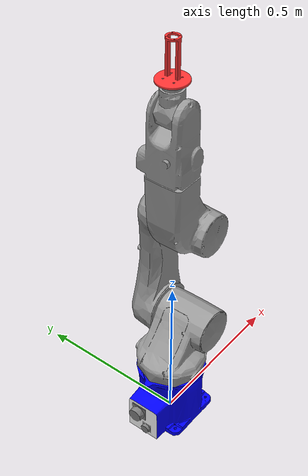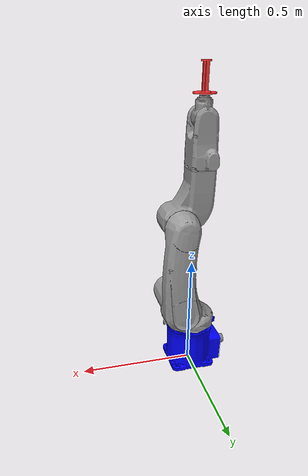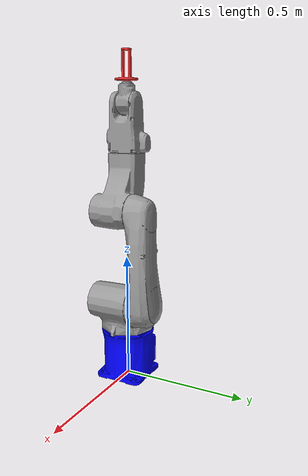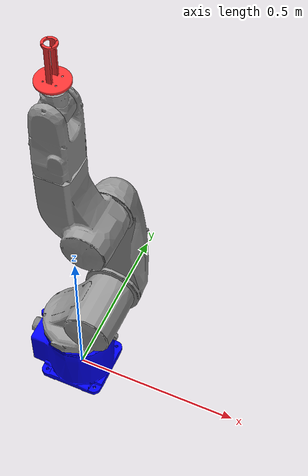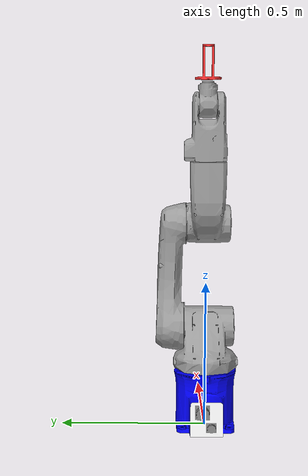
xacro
<?xml version="1.0" encoding="UTF-8"?>
<robot name="add_post_pro_robot_b120" xmlns:xacro="http://www.ros.org/wiki/xacro">
    <xacro:include filename="$(find denso_robot_descriptions)/vs6577_description/urdf/vs6577_vaccum.urdf.xacro"/>

    <!--xacro:include filename="$(find add_post_pro_robot)/urdf/multisensor_holder.urdf.xacro"/-->
</robot>

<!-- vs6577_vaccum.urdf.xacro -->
<robot name="vs6577" xmlns:xacro="http://www.ros.org/wiki/xacro">

<xacro:include filename="$(find denso_robot_descriptions)/vs6577_description/urdf/vs6577.transmission.xacro"/>
<xacro:include filename="$(find add_post_pro_simulation)/urdf/vaccum_gripper.urdf.xacro"/>

	<gazebo>
        <plugin name="gazebo_ros_control" filename="libgazebo_ros_control.so">
            <robotNamespace>/vs6577</robotNamespace>
			<legacyModeNS>true</legacyModeNS>
        </plugin>
    </gazebo>

	<link name="world"/>

	<joint name="joint_w" type="fixed">
		<parent link="world"/>
		<child link="base_link"/>
		<origin xyz="0 0 0"/>
	</joint>

	<link name="base_link">
		<visual>
			<origin rpy="0 0 0" xyz="0 0 0"/>
			<geometry>
				<mesh filename="package://denso_robot_descriptions/vs6577_description/meshes/base_link.dae" scale="1 1 1"/>
			</geometry>
		</visual>
		<collision>
			<origin rpy="0 0 0" xyz="0 0 0"/>
			<geometry>
				<mesh filename="package://denso_robot_descriptions/vs6577_description/meshes/base_link.dae" scale="1 1 1"/>
			</geometry>
		</collision>
		<inertial>
			<mass value="1"/>
			<origin rpy="0.000000 0.000000 0.000000" xyz="0.000000 0.000000 0.000000"/>
			<inertia ixx="1" ixy="0" ixz="0" iyy="1" iyz="0" izz="1"/>
		</inertial>
	</link>
	<link name="J1">
		<visual>
			<origin rpy="0 0 0" xyz="0 0 0"/>
			<geometry>
				<mesh filename="package://denso_robot_descriptions/vs6577_description/meshes/J1.dae" scale="1 1 1"/>
			</geometry>
		</visual>
		<collision>
			<origin rpy="0 0 0" xyz="0 0 0"/>
			<geometry>
				<mesh filename="package://denso_robot_descriptions/vs6577_description/meshes/J1.dae" scale="1 1 1"/>
			</geometry>
		</collision>
		<inertial>
			<mass value="1"/>
			<origin rpy="0.000000 0.000000 0.000000" xyz="0.000000 0.000000 0.000000"/>
			<inertia ixx="1" ixy="0" ixz="0" iyy="1" iyz="0" izz="1"/>
		</inertial>
	</link>
	<link name="J2">
		<visual>
			<origin rpy="0 0 0" xyz="0 0 0"/>
			<geometry>
				<mesh filename="package://denso_robot_descriptions/vs6577_description/meshes/J2.dae" scale="1 1 1"/>
			</geometry>
		</visual>
		<collision>
			<origin rpy="0 0 0" xyz="0 0 0"/>
			<geometry>
				<mesh filename="package://denso_robot_descriptions/vs6577_description/meshes/J2.dae" scale="1 1 1"/>
			</geometry>
		</collision>
		<inertial>
			<mass value="1"/>
			<origin rpy="0.000000 0.000000 0.000000" xyz="0.000000 0.000000 0.000000"/>
			<inertia ixx="1" ixy="0" ixz="0" iyy="1" iyz="0" izz="1"/>
		</inertial>
	</link>
	<link name="J3">
		<visual>
			<origin rpy="0 0 0" xyz="0 0 0"/>
			<geometry>
				<mesh filename="package://denso_robot_descriptions/vs6577_description/meshes/J3.dae" scale="1 1 1"/>
			</geometry>
		</visual>
		<collision>
			<origin rpy="0 0 0" xyz="0 0 0"/>
			<geometry>
				<mesh filename="package://denso_robot_descriptions/vs6577_description/meshes/J3.dae" scale="1 1 1"/>
			</geometry>
		</collision>
		<inertial>
			<mass value="1"/>
			<origin rpy="0.000000 0.000000 0.000000" xyz="0.000000 0.000000 0.000000"/>
			<inertia ixx="1" ixy="0" ixz="0" iyy="1" iyz="0" izz="1"/>
		</inertial>
	</link>
	<link name="J4">
		<visual>
			<origin rpy="0 0 0" xyz="0 0 0"/>
			<geometry>
				<mesh filename="package://denso_robot_descriptions/vs6577_description/meshes/J4.dae" scale="1 1 1"/>
			</geometry>
		</visual>
		<collision>
			<origin rpy="0 0 0" xyz="0 0 0"/>
			<geometry>
				<mesh filename="package://denso_robot_descriptions/vs6577_description/meshes/J4.dae" scale="1 1 1"/>
			</geometry>
		</collision>
		<inertial>
			<mass value="1"/>
			<origin rpy="0.000000 0.000000 0.000000" xyz="0.000000 0.000000 0.000000"/>
			<inertia ixx="1" ixy="0" ixz="0" iyy="1" iyz="0" izz="1"/>
		</inertial>
	</link>
	<link name="J5">
		<visual>
			<origin rpy="0 0 0" xyz="0 0 0"/>
			<geometry>
				<mesh filename="package://denso_robot_descriptions/vs6577_description/meshes/J5.dae" scale="1 1 1"/>
			</geometry>
		</visual>
		<collision>
			<origin rpy="0 0 0" xyz="0 0 0"/>
			<geometry>
				<mesh filename="package://denso_robot_descriptions/vs6577_description/meshes/J5.dae" scale="1 1 1"/>
			</geometry>
		</collision>
		<inertial>
			<mass value="1"/>
			<origin rpy="0.000000 0.000000 0.000000" xyz="0.000000 0.000000 0.000000"/>
			<inertia ixx="1" ixy="0" ixz="0" iyy="1" iyz="0" izz="1"/>
		</inertial>
	</link>
	<link name="J6">
		<visual>
			<origin rpy="0 0 0" xyz="0 0 0"/>
			<geometry>
				<mesh filename="package://denso_robot_descriptions/vs6577_description/meshes/J6.dae" scale="1 1 1"/>
			</geometry>
		</visual>
		<collision>
			<origin rpy="0 0 0" xyz="0 0 0"/>
			<geometry>
				<mesh filename="package://denso_robot_descriptions/vs6577_description/meshes/J6.dae" scale="1 1 1"/>
			</geometry>
		</collision>
		<inertial>
			<mass value="1"/>
			<origin rpy="0.000000 0.000000 0.000000" xyz="0.000000 0.000000 0.000000"/>
			<inertia ixx="1" ixy="0" ixz="0" iyy="1" iyz="0" izz="1"/>
		</inertial>
	</link>

	<gazebo reference="base_link">
		<material>Gazebo/CoM</material>
	</gazebo>
	<gazebo reference="J1">
		<material>Gazebo/Gray</material>
	</gazebo>
	<gazebo reference="J2">
		<material>Gazebo/Gray</material>
	</gazebo>
	<gazebo reference="J3">
		<material>Gazebo/Gray</material>
	</gazebo>
	<gazebo reference="J4">
		<material>Gazebo/Gray</material>
	</gazebo>
	<gazebo reference="J5">
		<material>Gazebo/Gray</material>
	</gazebo>
	<gazebo reference="J6">
		<material>Gazebo/Gray</material>
	</gazebo>

	<gazebo>
		<gravity>False</gravity>
	</gazebo>
	<joint name="joint_1" type="revolute">
		<parent link="base_link"/>
		<child link="J1"/>
		<origin rpy="0.000000 0.000000 0.000000" xyz="0.000000 0.000000 0.000000"/>
		<axis xyz="-0.000000 -0.000000 1.000000"/>
		<limit effort="100" lower="-2.96706" upper="2.96706" velocity="1"/>
		<dynamics damping="0" friction="0"/>
	</joint>

	<joint name="joint_2" type="revolute">
		<parent link="J1"/>
		<child link="J2"/>
		<origin rpy="0.000000 0.000000 0.000000" xyz="0.075000 0.000000 0.335000"/>
		<axis xyz="-0.000000 1.000000 -0.000000"/>
		<limit effort="100" lower="-1.745329" upper="2.356194" velocity="1"/>
		<dynamics damping="0" friction="0"/>
	</joint>

	<joint name="joint_3" type="revolute">
		<parent link="J2"/>
		<child link="J3"/>
		<origin rpy="0.000000 0.000000 0.000000" xyz="0.000000 0.000000 0.365000"/>
		<axis xyz="-0.000000 1.000000 -0.000000"/>
		<limit effort="100" lower="-2.076942" upper="2.949606" velocity="1"/>
		<dynamics damping="0" friction="0"/>
	</joint>

	<joint name="joint_4" type="revolute">
		<parent link="J3"/>
		<child link="J4"/>
		<origin rpy="0.000000 0.000000 0.000000" xyz="-0.090000 0.000000 -0.700000"/>
		<axis xyz="-0.000000 -0.000000 1.000000"/>
		<limit effort="100" lower="-3.316126" upper="3.316126" velocity="1"/>
		<dynamics damping="0" friction="0"/>
	</joint>

	<joint name="joint_5" type="revolute">
		<parent link="J4"/>
		<child link="J5"/>
		<origin rpy="0.000000 0.000000 0.000000" xyz="0.000000 0.000000 1.105000"/>
		<axis xyz="-0.000000 1.000000 -0.000000"/>
		<limit effort="100" lower="-2.094395" upper="2.094395" velocity="1"/>
		<dynamics damping="0" friction="0"/>
	</joint>

	<joint name="joint_6" type="revolute">
		<parent link="J5"/>
		<child link="J6"/>
		<origin rpy="0.000000 0.000000 0.000000" xyz="0.000000 0.000000 0.080000"/>
		<axis xyz="-0.000000 -0.000000 1.000000"/>
		<limit effort="100" lower="-6.283185" upper="6.283185" velocity="1"/>
		<dynamics damping="0" friction="0"/>
	</joint>

</robot>

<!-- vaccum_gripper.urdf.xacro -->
<robot name="vaccum_gripper">
  <!--########### adding vaccum ##########-->
<link name="vaccum_link">
    <inertial>
      <origin rpy="0 0 0" xyz="0 0 0"/>
      <mass value="1.0"/>
       <inertia ixx="0" ixy="0.0" ixz="0.0" iyy="0" iyz="0.0" izz="0"/>
    </inertial>
    <visual>
      <origin rpy="0 0 0" xyz="0 0 0"/>
      <geometry>
        <mesh
          filename="package://add_post_pro_simulation/mesh/Blower_Tool_v2.stl" scale="0.001 0.001 0.001" />
      </geometry>

      <material name="red">
        <color rgba="1 0.2 0.2 1"/>
      </material>
    </visual>
    <collision>
      <origin rpy="0 0 0" xyz="0 0 0"/>
      <geometry>
        <mesh
        filename="package://add_post_pro_simulation/mesh/Blower_Tool_v2.stl" scale="0.001 0.001 0.001" />
      </geometry>
    </collision>
  </link>

    <joint name="vaccum_joint" type="fixed">
        <parent link="J6" />
        <child link="vaccum_link" />
        <origin rpy="-1.571000 0.000000 0.000000" xyz="-0.0450000 -0.0450000 0.120000" />
        <axis xyz="-0.000000 -0.000000 0.000000" />
        <!--limit effort="100" lower="-2.076942" upper="2.949606" velocity="1" /-->
        <dynamics damping="0" friction="0" />
    </joint>

<!--########### end adding vaccum ##########-->
  <gazebo reference="vaccum_link">
    <material>Gazebo/White</material>
  </gazebo>
</robot>
